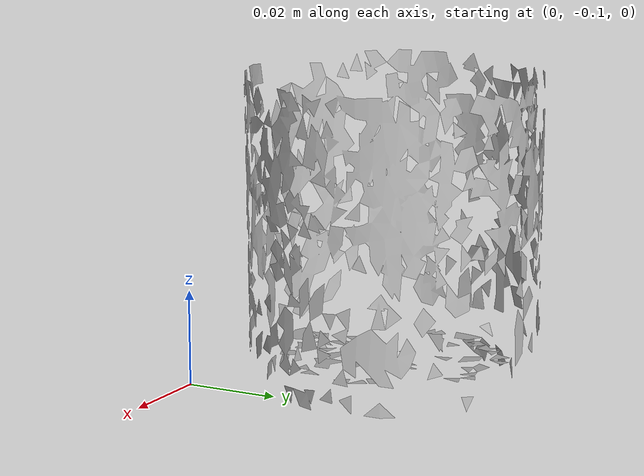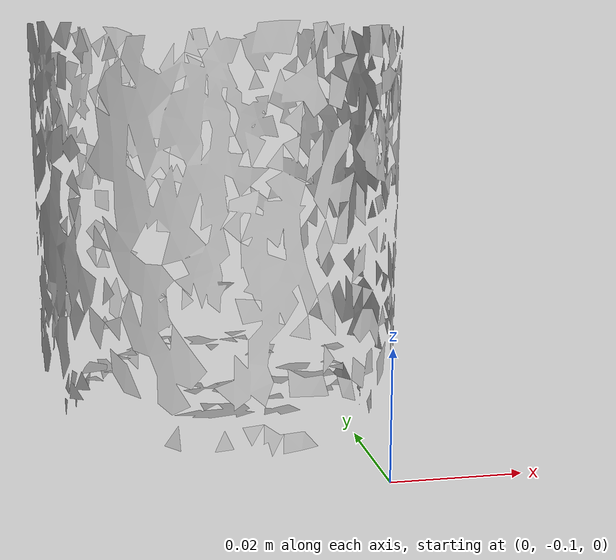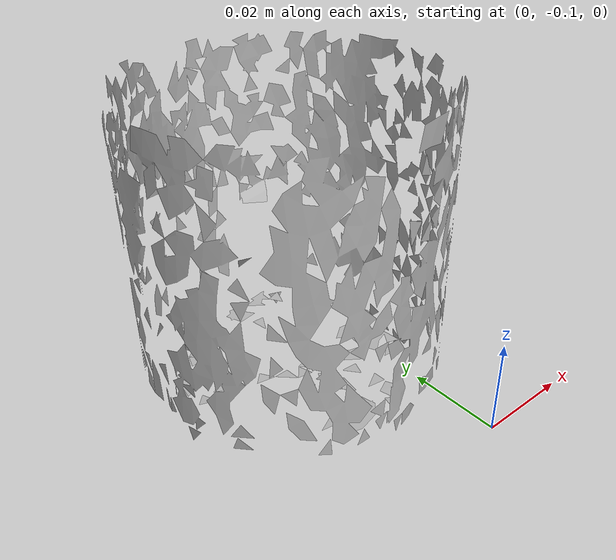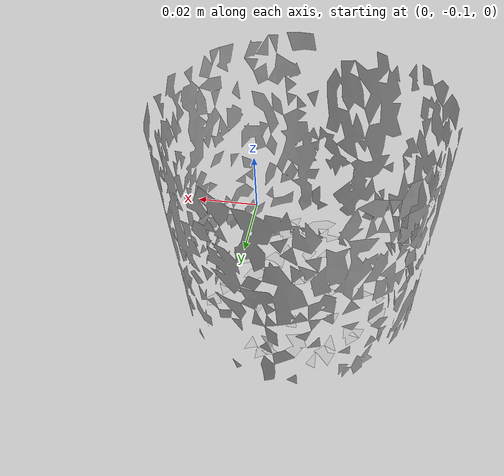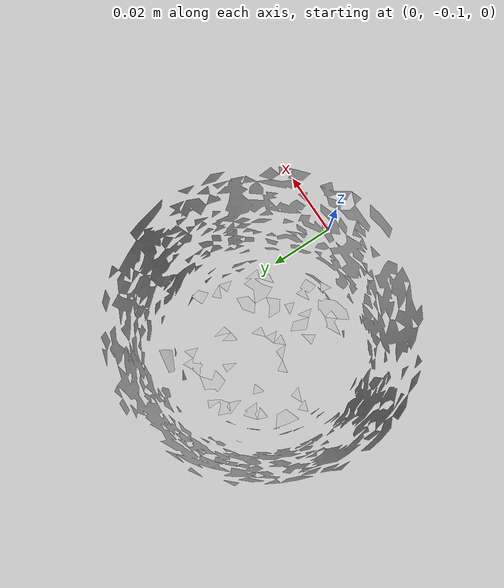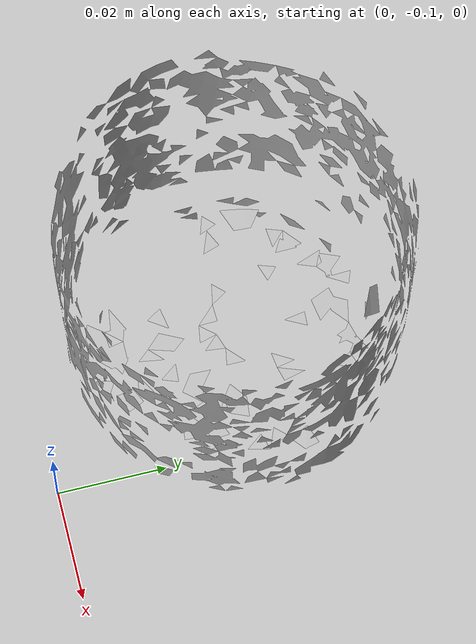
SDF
<?xml version="1.0" ?>
<sdf version="1.4">
  <model name='ycb_065-d_cups'>
    <link name='body'>
      <inertial>
        <mass>0.028</mass>
        <pose>-0.0183771496813 -0.0597866648969 0.0315830432945 0 0 0</pose>
        <inertia>
          <ixx>2.29838163669e-05</ixx>
          <ixy>-9.66876916043e-08</ixy>
          <ixz>3.52642946832e-07</ixz>
          <iyy>2.24487181913e-05</iyy>
          <iyz>7.62513764561e-07</iyz>
          <izz>2.17291829964e-05</izz>
        </inertia>
      </inertial>
      <visual name='ycb_065-d_cups_visual'>
        <pose>0 0 0 0 0 0</pose>
        <geometry>
          <mesh>
            <uri>model://ycb_065-d_cups/meshes/textured.dae</uri>
          </mesh>
        </geometry>
      </visual>
      <collision name='ycb_065-d_cups_collision'>
        <pose>0 0 0 0 0 0</pose>
        <geometry>
          <mesh>
            <uri>model://ycb_065-d_cups/meshes/nontextured.stl</uri>
          </mesh>
        </geometry>
        <max_contacts>10</max_contacts>
      </collision>
    </link>
  </model>
</sdf>
